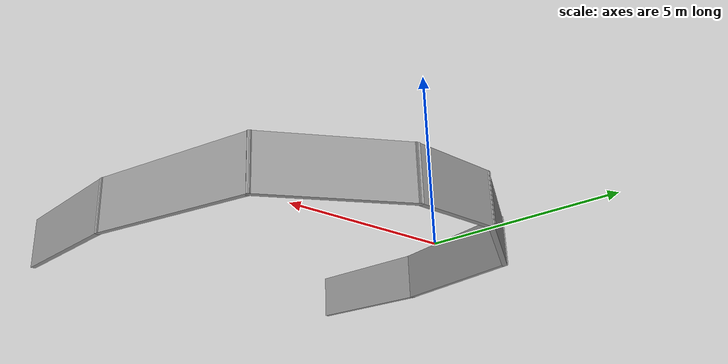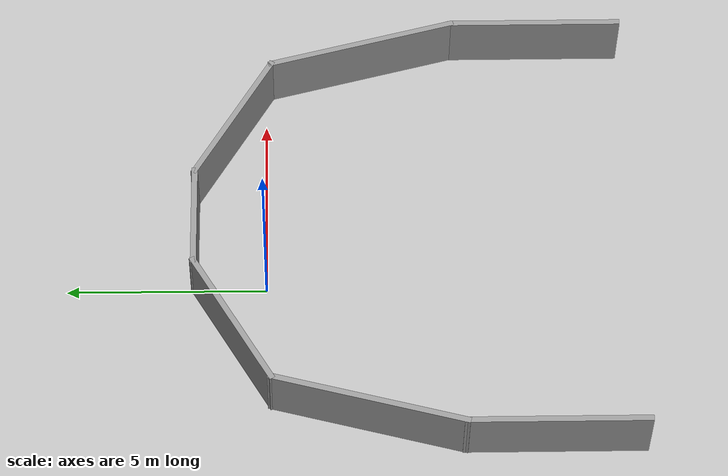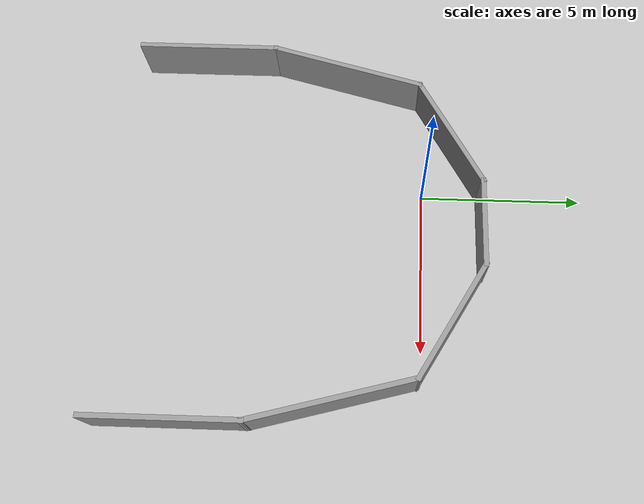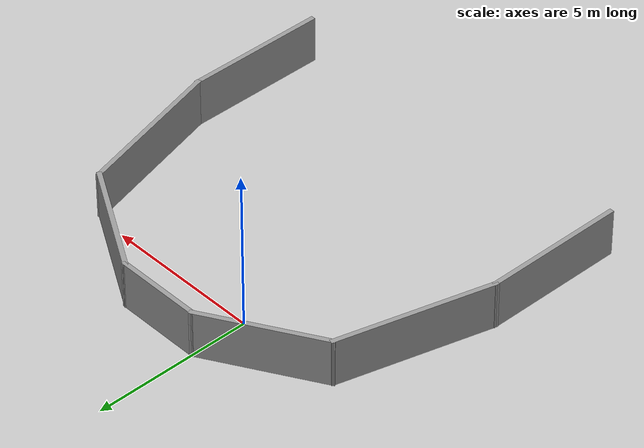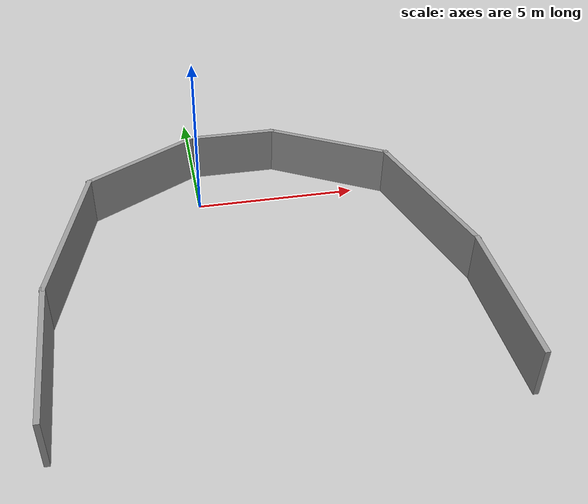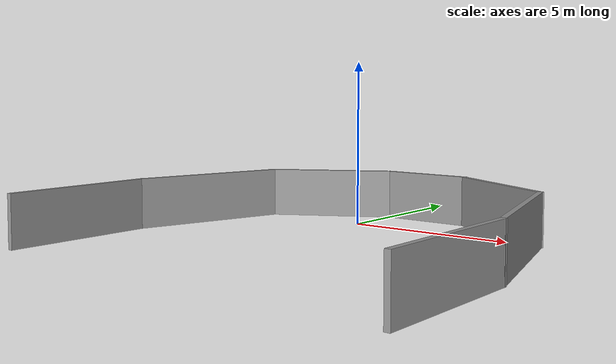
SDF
<?xml version='1.0'?>
<sdf version='1.6'>
  <model name='U-shape'>
    <pose frame=''>1.34501 -3.67825 0 0 -0 0</pose>
    <link name='Wall_102'>
      <collision name='Wall_102_Collision'>
        <geometry>
          <box>
            <size>5 0.15 1.5</size>
          </box>
        </geometry>
        <pose frame=''>0 0 0.75 0 -0 0</pose>
      </collision>
      <visual name='Wall_102_Visual'>
        <pose frame=''>0 0 0.75 0 -0 0</pose>
        <geometry>
          <box>
            <size>5 0.15 1.5</size>
          </box>
        </geometry>
        <material>
          <script>
            <uri>file://media/materials/scripts/gazebo.material</uri>
            <name>Gazebo/Grey</name>
          </script>
          <ambient>1 1 1 1</ambient>
        </material>
        <meta>
          <layer>0</layer>
        </meta>
      </visual>
      <pose frame=''>-5.29701 1.19875 0 0 -0 1.30887</pose>
    </link>
    <link name='Wall_103'>
      <collision name='Wall_103_Collision'>
        <geometry>
          <box>
            <size>4 0.15 1.5</size>
          </box>
        </geometry>
        <pose frame=''>0 0 0.75 0 -0 0</pose>
      </collision>
      <visual name='Wall_103_Visual'>
        <pose frame=''>0 0 0.75 0 -0 0</pose>
        <geometry>
          <box>
            <size>4 0.15 1.5</size>
          </box>
        </geometry>
        <material>
          <script>
            <uri>file://media/materials/scripts/gazebo.material</uri>
            <name>Gazebo/Grey</name>
          </script>
          <ambient>1 1 1 1</ambient>
        </material>
        <meta>
          <layer>0</layer>
        </meta>
      </visual>
      <pose frame=''>-3.00201 4.50375 0 0 -0 0.523624</pose>
    </link>
    <link name='Wall_105'>
      <collision name='Wall_105_Collision'>
        <geometry>
          <box>
            <size>4.5 0.15 1.5</size>
          </box>
        </geometry>
        <pose frame=''>0 0 0.75 0 -0 0</pose>
      </collision>
      <visual name='Wall_105_Visual'>
        <pose frame=''>0 0 0.75 0 -0 0</pose>
        <geometry>
          <box>
            <size>4.5 0.15 1.5</size>
          </box>
        </geometry>
        <material>
          <script>
            <uri>file://media/materials/scripts/gazebo.material</uri>
            <name>Gazebo/Grey</name>
          </script>
          <ambient>1 1 1 1</ambient>
        </material>
        <meta>
          <layer>0</layer>
        </meta>
      </visual>
      <pose frame=''>5.92499 -3.31875 0 0 -0 1.5708</pose>
    </link>
    <link name='Wall_106'>
      <collision name='Wall_106_Collision'>
        <geometry>
          <box>
            <size>5 0.15 1.5</size>
          </box>
        </geometry>
        <pose frame=''>0 0 0.75 0 -0 0</pose>
      </collision>
      <visual name='Wall_106_Visual'>
        <pose frame=''>0 0 0.75 0 -0 0</pose>
        <geometry>
          <box>
            <size>5 0.15 1.5</size>
          </box>
        </geometry>
        <material>
          <script>
            <uri>file://media/materials/scripts/gazebo.material</uri>
            <name>Gazebo/Grey</name>
          </script>
          <ambient>1 1 1 1</ambient>
        </material>
        <meta>
          <layer>0</layer>
        </meta>
      </visual>
      <pose frame=''>5.29749 1.19875 0 0 -0 1.83253</pose>
    </link>
    <link name='Wall_107'>
      <collision name='Wall_107_Collision'>
        <geometry>
          <box>
            <size>4 0.15 1.5</size>
          </box>
        </geometry>
        <pose frame=''>0 0 0.75 0 -0 0</pose>
      </collision>
      <visual name='Wall_107_Visual'>
        <pose frame=''>0 0 0.75 0 -0 0</pose>
        <geometry>
          <box>
            <size>4 0.15 1.5</size>
          </box>
        </geometry>
        <material>
          <script>
            <uri>file://media/materials/scripts/gazebo.material</uri>
            <name>Gazebo/Grey</name>
          </script>
          <ambient>1 1 1 1</ambient>
        </material>
        <meta>
          <layer>0</layer>
        </meta>
      </visual>
      <pose frame=''>3.00299 4.50375 0 0 -0 2.61797</pose>
    </link>
    <link name='Wall_108'>
      <collision name='Wall_108_Collision'>
        <geometry>
          <box>
            <size>2.82072 0.15 1.5</size>
          </box>
        </geometry>
        <pose frame=''>0 0 0.75 0 -0 0</pose>
      </collision>
      <visual name='Wall_108_Visual'>
        <pose frame=''>0 0 0.75 0 -0 0</pose>
        <geometry>
          <box>
            <size>2.82072 0.15 1.5</size>
          </box>
        </geometry>
        <material>
          <script>
            <uri>file://media/materials/scripts/gazebo.material</uri>
            <name>Gazebo/Grey</name>
          </script>
          <ambient>1 1 1 1</ambient>
        </material>
        <meta>
          <layer>0</layer>
        </meta>
      </visual>
      <pose frame=''>0.000489 5.46625 0 0 -0 3.14159</pose>
    </link>
    <link name='Wall_98'>
      <collision name='Wall_98_Collision'>
        <geometry>
          <box>
            <size>4.5 0.15 1.5</size>
          </box>
        </geometry>
        <pose frame=''>0 0 0.75 0 -0 0</pose>
      </collision>
      <visual name='Wall_98_Visual'>
        <pose frame=''>0 0 0.75 0 -0 0</pose>
        <geometry>
          <box>
            <size>4.5 0.15 1.5</size>
          </box>
        </geometry>
        <material>
          <script>
            <uri>file://media/materials/scripts/gazebo.material</uri>
            <name>Gazebo/Grey</name>
          </script>
          <ambient>1 1 1 1</ambient>
        </material>
        <meta>
          <layer>0</layer>
        </meta>
      </visual>
      <pose frame=''>-5.92501 -3.31875 0 0 -0 1.5708</pose>
    </link>
    <static>1</static>
  </model>
</sdf>
